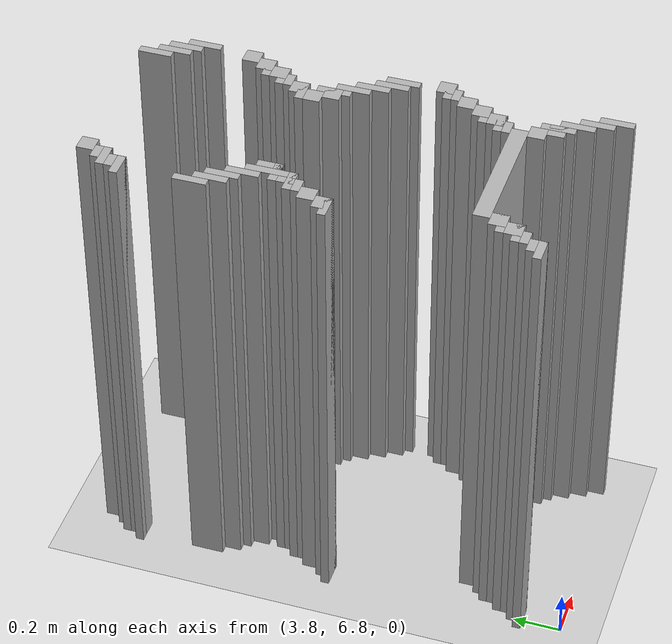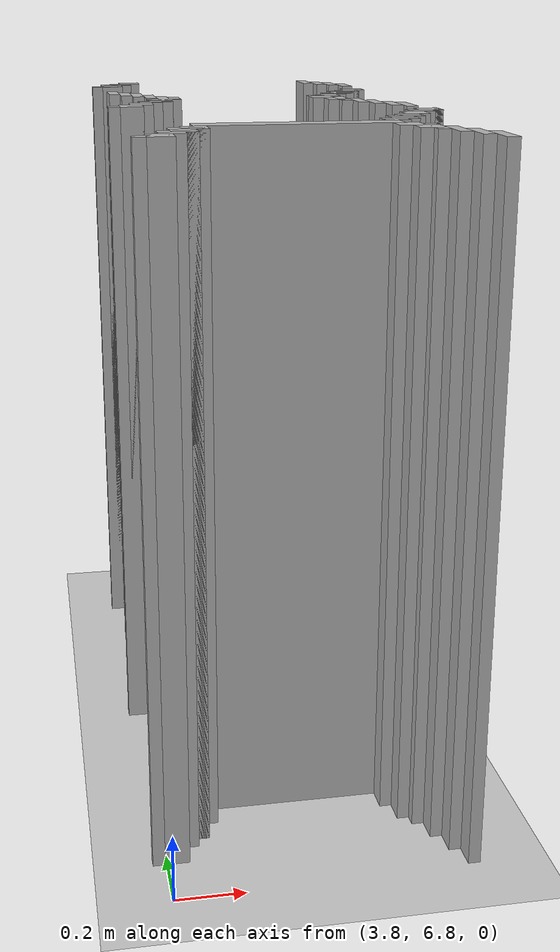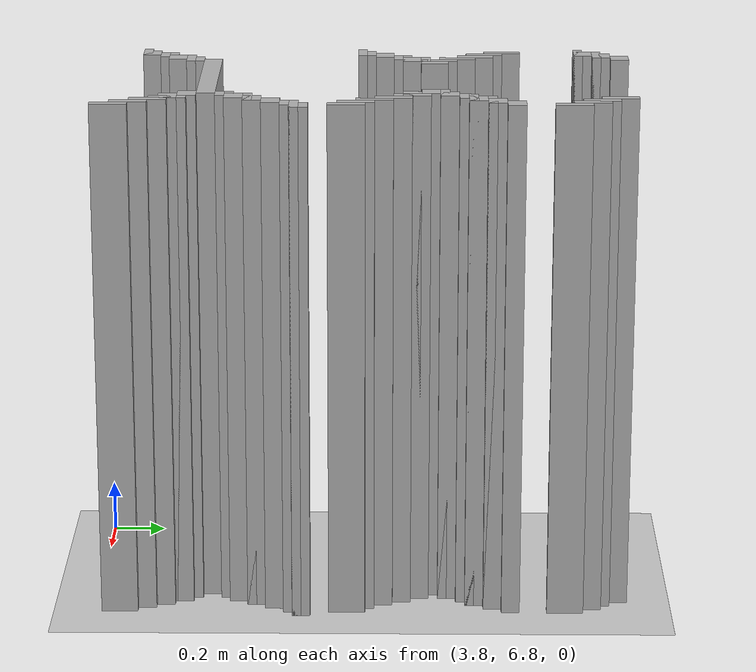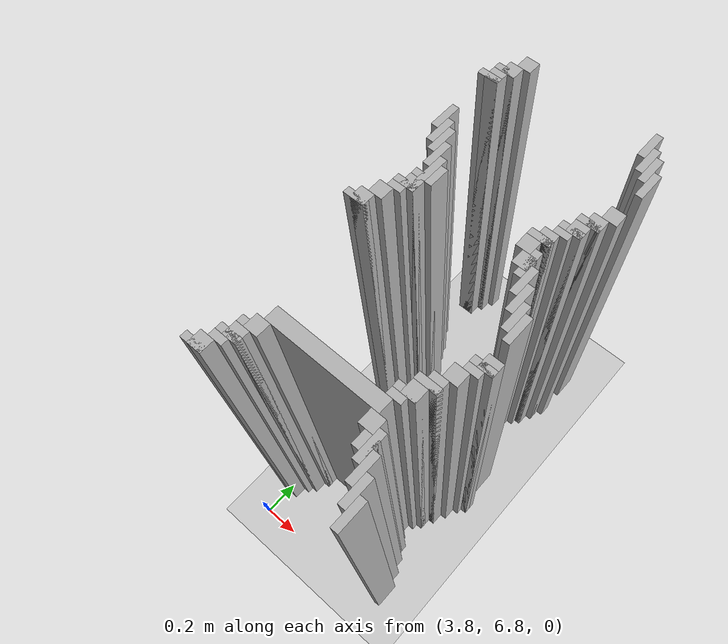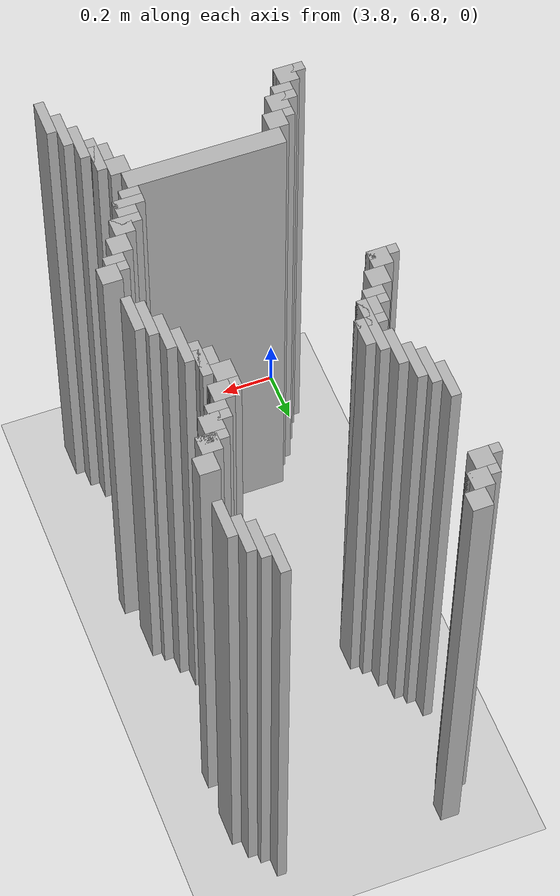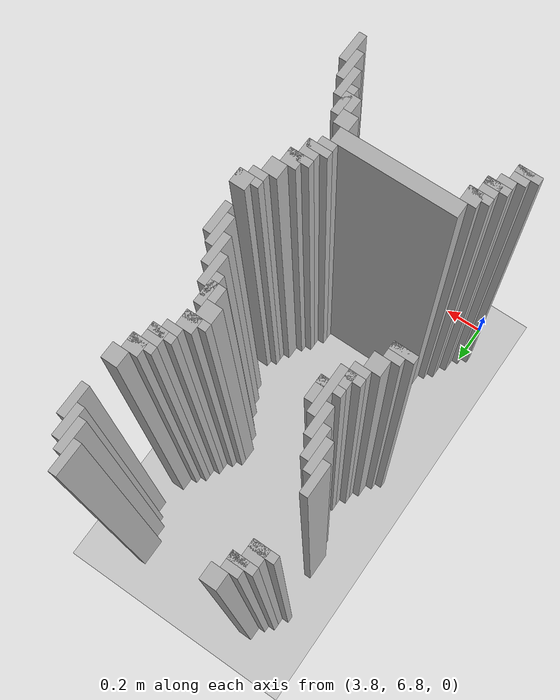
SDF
<sdf version="1.6">
 <world name="slam_world">
  <model name="ground_plane">
   <static>true</static>
   <link name="link">
    <collision name="collision">
     <geometry><plane><normal>0 0 1</normal><size>100 100</size></plane></geometry>
    </collision>
    <visual name="visual">
     <geometry><plane><normal>0 0 1</normal><size>100 100</size></plane></geometry>
     <material>
      <ambient>0.8 0.8 0.8 1</ambient>
      <diffuse>0.8 0.8 0.8 1</diffuse>
      <specular>0.8 0.8 0.8 1</specular>
     </material>
    </visual>
   </link>
  </model>
  <model name="wall_2870">
   <static>true</static>
   <pose>3.897911832946636 8.805104408352667 1.0 0 0 0</pose>
   <link name="link">
    <collision name="collision">
     <geometry><box><size>0.06960556844547564 0.06960556844547564 2.0</size></box></geometry>
    </collision>
    <visual name="visual">
     <geometry><box><size>0.06960556844547564 0.06960556844547564 2.0</size></box></geometry>
     <material><ambient>0.5 0.5 0.5 1</ambient><diffuse>0.7 0.7 0.7 1</diffuse></material>
    </visual>
   </link>
  </model>
  <model name="wall_2871">
   <static>true</static>
   <pose>4.541763341067285 8.77030162412993 1.0 0 0 0</pose>
   <link name="link">
    <collision name="collision">
     <geometry><box><size>0.03480278422273782 0.13921113689095127 2.0</size></box></geometry>
    </collision>
    <visual name="visual">
     <geometry><box><size>0.03480278422273782 0.13921113689095127 2.0</size></box></geometry>
     <material><ambient>0.5 0.5 0.5 1</ambient><diffuse>0.7 0.7 0.7 1</diffuse></material>
    </visual>
   </link>
  </model>
  <model name="wall_2883">
   <static>true</static>
   <pose>3.863109048723898 8.735498839907192 1.0 0 0 0</pose>
   <link name="link">
    <collision name="collision">
     <geometry><box><size>0.06960556844547564 0.06960556844547564 2.0</size></box></geometry>
    </collision>
    <visual name="visual">
     <geometry><box><size>0.06960556844547564 0.06960556844547564 2.0</size></box></geometry>
     <material><ambient>0.5 0.5 0.5 1</ambient><diffuse>0.7 0.7 0.7 1</diffuse></material>
    </visual>
   </link>
  </model>
  <model name="wall_2884">
   <static>true</static>
   <pose>4.576566125290023 8.700696055684455 1.0 0 0 0</pose>
   <link name="link">
    <collision name="collision">
     <geometry><box><size>0.03480278422273782 0.13921113689095127 2.0</size></box></geometry>
    </collision>
    <visual name="visual">
     <geometry><box><size>0.03480278422273782 0.13921113689095127 2.0</size></box></geometry>
     <material><ambient>0.5 0.5 0.5 1</ambient><diffuse>0.7 0.7 0.7 1</diffuse></material>
    </visual>
   </link>
  </model>
  <model name="wall_2896">
   <static>true</static>
   <pose>3.845707656612529 8.718097447795824 1.0 0 0 0</pose>
   <link name="link">
    <collision name="collision">
     <geometry><box><size>0.10440835266821345 0.03480278422273782 2.0</size></box></geometry>
    </collision>
    <visual name="visual">
     <geometry><box><size>0.10440835266821345 0.03480278422273782 2.0</size></box></geometry>
     <material><ambient>0.5 0.5 0.5 1</ambient><diffuse>0.7 0.7 0.7 1</diffuse></material>
    </visual>
   </link>
  </model>
  <model name="wall_2897">
   <static>true</static>
   <pose>4.611368909512761 8.665893271461716 1.0 0 0 0</pose>
   <link name="link">
    <collision name="collision">
     <geometry><box><size>0.03480278422273782 0.13921113689095127 2.0</size></box></geometry>
    </collision>
    <visual name="visual">
     <geometry><box><size>0.03480278422273782 0.13921113689095127 2.0</size></box></geometry>
     <material><ambient>0.5 0.5 0.5 1</ambient><diffuse>0.7 0.7 0.7 1</diffuse></material>
    </visual>
   </link>
  </model>
  <model name="wall_2907">
   <static>true</static>
   <pose>3.82830626450116 8.665893271461716 1.0 0 0 0</pose>
   <link name="link">
    <collision name="collision">
     <geometry><box><size>0.06960556844547564 0.06960556844547564 2.0</size></box></geometry>
    </collision>
    <visual name="visual">
     <geometry><box><size>0.06960556844547564 0.06960556844547564 2.0</size></box></geometry>
     <material><ambient>0.5 0.5 0.5 1</ambient><diffuse>0.7 0.7 0.7 1</diffuse></material>
    </visual>
   </link>
  </model>
  <model name="wall_2918">
   <static>true</static>
   <pose>3.810904872389791 8.648491879350347 1.0 0 0 0</pose>
   <link name="link">
    <collision name="collision">
     <geometry><box><size>0.10440835266821345 0.03480278422273782 2.0</size></box></geometry>
    </collision>
    <visual name="visual">
     <geometry><box><size>0.10440835266821345 0.03480278422273782 2.0</size></box></geometry>
     <material><ambient>0.5 0.5 0.5 1</ambient><diffuse>0.7 0.7 0.7 1</diffuse></material>
    </visual>
   </link>
  </model>
  <model name="wall_2919">
   <static>true</static>
   <pose>4.646171693735498 8.596287703016241 1.0 0 0 0</pose>
   <link name="link">
    <collision name="collision">
     <geometry><box><size>0.03480278422273782 0.13921113689095127 2.0</size></box></geometry>
    </collision>
    <visual name="visual">
     <geometry><box><size>0.03480278422273782 0.13921113689095127 2.0</size></box></geometry>
     <material><ambient>0.5 0.5 0.5 1</ambient><diffuse>0.7 0.7 0.7 1</diffuse></material>
    </visual>
   </link>
  </model>
  <model name="wall_3004">
   <static>true</static>
   <pose>3.810904872389791 8.352668213457076 1.0 0 0 0</pose>
   <link name="link">
    <collision name="collision">
     <geometry><box><size>0.03480278422273782 0.13921113689095127 2.0</size></box></geometry>
    </collision>
    <visual name="visual">
     <geometry><box><size>0.03480278422273782 0.13921113689095127 2.0</size></box></geometry>
     <material><ambient>0.5 0.5 0.5 1</ambient><diffuse>0.7 0.7 0.7 1</diffuse></material>
    </visual>
   </link>
  </model>
  <model name="wall_3005">
   <static>true</static>
   <pose>4.6287703016241295 8.387470997679815 1.0 0 0 0</pose>
   <link name="link">
    <collision name="collision">
     <geometry><box><size>0.06960556844547564 0.06960556844547564 2.0</size></box></geometry>
    </collision>
    <visual name="visual">
     <geometry><box><size>0.06960556844547564 0.06960556844547564 2.0</size></box></geometry>
     <material><ambient>0.5 0.5 0.5 1</ambient><diffuse>0.7 0.7 0.7 1</diffuse></material>
    </visual>
   </link>
  </model>
  <model name="wall_3019">
   <static>true</static>
   <pose>3.845707656612529 8.2830626450116 1.0 0 0 0</pose>
   <link name="link">
    <collision name="collision">
     <geometry><box><size>0.03480278422273782 0.13921113689095127 2.0</size></box></geometry>
    </collision>
    <visual name="visual">
     <geometry><box><size>0.03480278422273782 0.13921113689095127 2.0</size></box></geometry>
     <material><ambient>0.5 0.5 0.5 1</ambient><diffuse>0.7 0.7 0.7 1</diffuse></material>
    </visual>
   </link>
  </model>
  <model name="wall_3020">
   <static>true</static>
   <pose>4.593967517401392 8.317865429234338 1.0 0 0 0</pose>
   <link name="link">
    <collision name="collision">
     <geometry><box><size>0.06960556844547564 0.06960556844547564 2.0</size></box></geometry>
    </collision>
    <visual name="visual">
     <geometry><box><size>0.06960556844547564 0.06960556844547564 2.0</size></box></geometry>
     <material><ambient>0.5 0.5 0.5 1</ambient><diffuse>0.7 0.7 0.7 1</diffuse></material>
    </visual>
   </link>
  </model>
  <model name="wall_3034">
   <static>true</static>
   <pose>3.8805104408352666 8.248259860788863 1.0 0 0 0</pose>
   <link name="link">
    <collision name="collision">
     <geometry><box><size>0.03480278422273782 0.13921113689095127 2.0</size></box></geometry>
    </collision>
    <visual name="visual">
     <geometry><box><size>0.03480278422273782 0.13921113689095127 2.0</size></box></geometry>
     <material><ambient>0.5 0.5 0.5 1</ambient><diffuse>0.7 0.7 0.7 1</diffuse></material>
    </visual>
   </link>
  </model>
  <model name="wall_3035">
   <static>true</static>
   <pose>4.576566125290023 8.30046403712297 1.0 0 0 0</pose>
   <link name="link">
    <collision name="collision">
     <geometry><box><size>0.10440835266821345 0.03480278422273782 2.0</size></box></geometry>
    </collision>
    <visual name="visual">
     <geometry><box><size>0.10440835266821345 0.03480278422273782 2.0</size></box></geometry>
     <material><ambient>0.5 0.5 0.5 1</ambient><diffuse>0.7 0.7 0.7 1</diffuse></material>
    </visual>
   </link>
  </model>
  <model name="wall_3049">
   <static>true</static>
   <pose>4.559164733178654 8.248259860788863 1.0 0 0 0</pose>
   <link name="link">
    <collision name="collision">
     <geometry><box><size>0.06960556844547564 0.06960556844547564 2.0</size></box></geometry>
    </collision>
    <visual name="visual">
     <geometry><box><size>0.06960556844547564 0.06960556844547564 2.0</size></box></geometry>
     <material><ambient>0.5 0.5 0.5 1</ambient><diffuse>0.7 0.7 0.7 1</diffuse></material>
    </visual>
   </link>
  </model>
  <model name="wall_3059">
   <static>true</static>
   <pose>3.9153132250580045 8.178654292343387 1.0 0 0 0</pose>
   <link name="link">
    <collision name="collision">
     <geometry><box><size>0.03480278422273782 0.13921113689095127 2.0</size></box></geometry>
    </collision>
    <visual name="visual">
     <geometry><box><size>0.03480278422273782 0.13921113689095127 2.0</size></box></geometry>
     <material><ambient>0.5 0.5 0.5 1</ambient><diffuse>0.7 0.7 0.7 1</diffuse></material>
    </visual>
   </link>
  </model>
  <model name="wall_3060">
   <static>true</static>
   <pose>4.541763341067285 8.230858468677495 1.0 0 0 0</pose>
   <link name="link">
    <collision name="collision">
     <geometry><box><size>0.10440835266821345 0.03480278422273782 2.0</size></box></geometry>
    </collision>
    <visual name="visual">
     <geometry><box><size>0.10440835266821345 0.03480278422273782 2.0</size></box></geometry>
     <material><ambient>0.5 0.5 0.5 1</ambient><diffuse>0.7 0.7 0.7 1</diffuse></material>
    </visual>
   </link>
  </model>
  <model name="wall_3074">
   <static>true</static>
   <pose>4.524361948955916 8.196055684454755 1.0 0 0 0</pose>
   <link name="link">
    <collision name="collision">
     <geometry><box><size>0.06960556844547564 0.03480278422273782 2.0</size></box></geometry>
    </collision>
    <visual name="visual">
     <geometry><box><size>0.06960556844547564 0.03480278422273782 2.0</size></box></geometry>
     <material><ambient>0.5 0.5 0.5 1</ambient><diffuse>0.7 0.7 0.7 1</diffuse></material>
    </visual>
   </link>
  </model>
  <model name="wall_3083">
   <static>true</static>
   <pose>3.9501160092807424 8.074245939675174 1.0 0 0 0</pose>
   <link name="link">
    <collision name="collision">
     <geometry><box><size>0.03480278422273782 0.2088167053364269 2.0</size></box></geometry>
    </collision>
    <visual name="visual">
     <geometry><box><size>0.03480278422273782 0.2088167053364269 2.0</size></box></geometry>
     <material><ambient>0.5 0.5 0.5 1</ambient><diffuse>0.7 0.7 0.7 1</diffuse></material>
    </visual>
   </link>
  </model>
  <model name="wall_3084">
   <static>true</static>
   <pose>4.489559164733178 8.14385150812065 1.0 0 0 0</pose>
   <link name="link">
    <collision name="collision">
     <geometry><box><size>0.06960556844547564 0.06960556844547564 2.0</size></box></geometry>
    </collision>
    <visual name="visual">
     <geometry><box><size>0.06960556844547564 0.06960556844547564 2.0</size></box></geometry>
     <material><ambient>0.5 0.5 0.5 1</ambient><diffuse>0.7 0.7 0.7 1</diffuse></material>
    </visual>
   </link>
  </model>
  <model name="wall_3097">
   <static>true</static>
   <pose>3.98491879350348 8.091647331786543 1.0 0 0 0</pose>
   <link name="link">
    <collision name="collision">
     <geometry><box><size>0.03480278422273782 0.10440835266821345 2.0</size></box></geometry>
    </collision>
    <visual name="visual">
     <geometry><box><size>0.03480278422273782 0.10440835266821345 2.0</size></box></geometry>
     <material><ambient>0.5 0.5 0.5 1</ambient><diffuse>0.7 0.7 0.7 1</diffuse></material>
    </visual>
   </link>
  </model>
  <model name="wall_3098">
   <static>true</static>
   <pose>4.472157772621809 8.12645011600928 1.0 0 0 0</pose>
   <link name="link">
    <collision name="collision">
     <geometry><box><size>0.10440835266821345 0.03480278422273782 2.0</size></box></geometry>
    </collision>
    <visual name="visual">
     <geometry><box><size>0.10440835266821345 0.03480278422273782 2.0</size></box></geometry>
     <material><ambient>0.5 0.5 0.5 1</ambient><diffuse>0.7 0.7 0.7 1</diffuse></material>
    </visual>
   </link>
  </model>
  <model name="wall_3112">
   <static>true</static>
   <pose>4.454756380510441 8.074245939675174 1.0 0 0 0</pose>
   <link name="link">
    <collision name="collision">
     <geometry><box><size>0.06960556844547564 0.06960556844547564 2.0</size></box></geometry>
    </collision>
    <visual name="visual">
     <geometry><box><size>0.06960556844547564 0.06960556844547564 2.0</size></box></geometry>
     <material><ambient>0.5 0.5 0.5 1</ambient><diffuse>0.7 0.7 0.7 1</diffuse></material>
    </visual>
   </link>
  </model>
  <model name="wall_3124">
   <static>true</static>
   <pose>3.9501160092807424 8.056844547563804 1.0 0 0 0</pose>
   <link name="link">
    <collision name="collision">
     <geometry><box><size>0.10440835266821345 0.03480278422273782 2.0</size></box></geometry>
    </collision>
    <visual name="visual">
     <geometry><box><size>0.10440835266821345 0.03480278422273782 2.0</size></box></geometry>
     <material><ambient>0.5 0.5 0.5 1</ambient><diffuse>0.7 0.7 0.7 1</diffuse></material>
    </visual>
   </link>
  </model>
  <model name="wall_3125">
   <static>true</static>
   <pose>4.506960556844548 8.004640371229698 1.0 0 0 0</pose>
   <link name="link">
    <collision name="collision">
     <geometry><box><size>0.03480278422273782 0.13921113689095127 2.0</size></box></geometry>
    </collision>
    <visual name="visual">
     <geometry><box><size>0.03480278422273782 0.13921113689095127 2.0</size></box></geometry>
     <material><ambient>0.5 0.5 0.5 1</ambient><diffuse>0.7 0.7 0.7 1</diffuse></material>
    </visual>
   </link>
  </model>
  <model name="wall_3138">
   <static>true</static>
   <pose>3.932714617169373 8.004640371229698 1.0 0 0 0</pose>
   <link name="link">
    <collision name="collision">
     <geometry><box><size>0.06960556844547564 0.06960556844547564 2.0</size></box></geometry>
    </collision>
    <visual name="visual">
     <geometry><box><size>0.06960556844547564 0.06960556844547564 2.0</size></box></geometry>
     <material><ambient>0.5 0.5 0.5 1</ambient><diffuse>0.7 0.7 0.7 1</diffuse></material>
    </visual>
   </link>
  </model>
  <model name="wall_3139">
   <static>true</static>
   <pose>4.489559164733178 8.004640371229698 1.0 0 0 0</pose>
   <link name="link">
    <collision name="collision">
     <geometry><box><size>0.06960556844547564 0.06960556844547564 2.0</size></box></geometry>
    </collision>
    <visual name="visual">
     <geometry><box><size>0.06960556844547564 0.06960556844547564 2.0</size></box></geometry>
     <material><ambient>0.5 0.5 0.5 1</ambient><diffuse>0.7 0.7 0.7 1</diffuse></material>
    </visual>
   </link>
  </model>
  <model name="wall_3154">
   <static>true</static>
   <pose>3.9153132250580045 7.987238979118329 1.0 0 0 0</pose>
   <link name="link">
    <collision name="collision">
     <geometry><box><size>0.10440835266821345 0.03480278422273782 2.0</size></box></geometry>
    </collision>
    <visual name="visual">
     <geometry><box><size>0.10440835266821345 0.03480278422273782 2.0</size></box></geometry>
     <material><ambient>0.5 0.5 0.5 1</ambient><diffuse>0.7 0.7 0.7 1</diffuse></material>
    </visual>
   </link>
  </model>
  <model name="wall_3155">
   <static>true</static>
   <pose>4.541763341067285 7.935034802784222 1.0 0 0 0</pose>
   <link name="link">
    <collision name="collision">
     <geometry><box><size>0.03480278422273782 0.13921113689095127 2.0</size></box></geometry>
    </collision>
    <visual name="visual">
     <geometry><box><size>0.03480278422273782 0.13921113689095127 2.0</size></box></geometry>
     <material><ambient>0.5 0.5 0.5 1</ambient><diffuse>0.7 0.7 0.7 1</diffuse></material>
    </visual>
   </link>
  </model>
  <model name="wall_3169">
   <static>true</static>
   <pose>3.897911832946636 7.952436194895592 1.0 0 0 0</pose>
   <link name="link">
    <collision name="collision">
     <geometry><box><size>0.06960556844547564 0.03480278422273782 2.0</size></box></geometry>
    </collision>
    <visual name="visual">
     <geometry><box><size>0.06960556844547564 0.03480278422273782 2.0</size></box></geometry>
     <material><ambient>0.5 0.5 0.5 1</ambient><diffuse>0.7 0.7 0.7 1</diffuse></material>
    </visual>
   </link>
  </model>
  <model name="wall_3181">
   <static>true</static>
   <pose>3.863109048723898 7.900232018561485 1.0 0 0 0</pose>
   <link name="link">
    <collision name="collision">
     <geometry><box><size>0.06960556844547564 0.06960556844547564 2.0</size></box></geometry>
    </collision>
    <visual name="visual">
     <geometry><box><size>0.06960556844547564 0.06960556844547564 2.0</size></box></geometry>
     <material><ambient>0.5 0.5 0.5 1</ambient><diffuse>0.7 0.7 0.7 1</diffuse></material>
    </visual>
   </link>
  </model>
  <model name="wall_3182">
   <static>true</static>
   <pose>4.576566125290023 7.865429234338746 1.0 0 0 0</pose>
   <link name="link">
    <collision name="collision">
     <geometry><box><size>0.03480278422273782 0.13921113689095127 2.0</size></box></geometry>
    </collision>
    <visual name="visual">
     <geometry><box><size>0.03480278422273782 0.13921113689095127 2.0</size></box></geometry>
     <material><ambient>0.5 0.5 0.5 1</ambient><diffuse>0.7 0.7 0.7 1</diffuse></material>
    </visual>
   </link>
  </model>
  <model name="wall_3197">
   <static>true</static>
   <pose>3.82830626450116 7.830626450116009 1.0 0 0 0</pose>
   <link name="link">
    <collision name="collision">
     <geometry><box><size>0.06960556844547564 0.06960556844547564 2.0</size></box></geometry>
    </collision>
    <visual name="visual">
     <geometry><box><size>0.06960556844547564 0.06960556844547564 2.0</size></box></geometry>
     <material><ambient>0.5 0.5 0.5 1</ambient><diffuse>0.7 0.7 0.7 1</diffuse></material>
    </visual>
   </link>
  </model>
  <model name="wall_3198">
   <static>true</static>
   <pose>4.611368909512761 7.795823665893272 1.0 0 0 0</pose>
   <link name="link">
    <collision name="collision">
     <geometry><box><size>0.03480278422273782 0.13921113689095127 2.0</size></box></geometry>
    </collision>
    <visual name="visual">
     <geometry><box><size>0.03480278422273782 0.13921113689095127 2.0</size></box></geometry>
     <material><ambient>0.5 0.5 0.5 1</ambient><diffuse>0.7 0.7 0.7 1</diffuse></material>
    </visual>
   </link>
  </model>
  <model name="wall_3213">
   <static>true</static>
   <pose>3.810904872389791 7.81322505800464 1.0 0 0 0</pose>
   <link name="link">
    <collision name="collision">
     <geometry><box><size>0.10440835266821345 0.03480278422273782 2.0</size></box></geometry>
    </collision>
    <visual name="visual">
     <geometry><box><size>0.10440835266821345 0.03480278422273782 2.0</size></box></geometry>
     <material><ambient>0.5 0.5 0.5 1</ambient><diffuse>0.7 0.7 0.7 1</diffuse></material>
    </visual>
   </link>
  </model>
  <model name="wall_3214">
   <static>true</static>
   <pose>4.646171693735498 7.761020881670533 1.0 0 0 0</pose>
   <link name="link">
    <collision name="collision">
     <geometry><box><size>0.03480278422273782 0.13921113689095127 2.0</size></box></geometry>
    </collision>
    <visual name="visual">
     <geometry><box><size>0.03480278422273782 0.13921113689095127 2.0</size></box></geometry>
     <material><ambient>0.5 0.5 0.5 1</ambient><diffuse>0.7 0.7 0.7 1</diffuse></material>
    </visual>
   </link>
  </model>
  <model name="wall_3295">
   <static>true</static>
   <pose>4.663573085846868 7.587006960556844 1.0 0 0 0</pose>
   <link name="link">
    <collision name="collision">
     <geometry><box><size>0.06960556844547564 0.06960556844547564 2.0</size></box></geometry>
    </collision>
    <visual name="visual">
     <geometry><box><size>0.06960556844547564 0.06960556844547564 2.0</size></box></geometry>
     <material><ambient>0.5 0.5 0.5 1</ambient><diffuse>0.7 0.7 0.7 1</diffuse></material>
    </visual>
   </link>
  </model>
  <model name="wall_3311">
   <static>true</static>
   <pose>4.646171693735498 7.569605568445476 1.0 0 0 0</pose>
   <link name="link">
    <collision name="collision">
     <geometry><box><size>0.10440835266821345 0.03480278422273782 2.0</size></box></geometry>
    </collision>
    <visual name="visual">
     <geometry><box><size>0.10440835266821345 0.03480278422273782 2.0</size></box></geometry>
     <material><ambient>0.5 0.5 0.5 1</ambient><diffuse>0.7 0.7 0.7 1</diffuse></material>
    </visual>
   </link>
  </model>
  <model name="wall_3326">
   <static>true</static>
   <pose>4.6287703016241295 7.534802784222737 1.0 0 0 0</pose>
   <link name="link">
    <collision name="collision">
     <geometry><box><size>0.06960556844547564 0.03480278422273782 2.0</size></box></geometry>
    </collision>
    <visual name="visual">
     <geometry><box><size>0.06960556844547564 0.03480278422273782 2.0</size></box></geometry>
     <material><ambient>0.5 0.5 0.5 1</ambient><diffuse>0.7 0.7 0.7 1</diffuse></material>
    </visual>
   </link>
  </model>
  <model name="wall_3338">
   <static>true</static>
   <pose>4.593967517401392 7.48259860788863 1.0 0 0 0</pose>
   <link name="link">
    <collision name="collision">
     <geometry><box><size>0.06960556844547564 0.06960556844547564 2.0</size></box></geometry>
    </collision>
    <visual name="visual">
     <geometry><box><size>0.06960556844547564 0.06960556844547564 2.0</size></box></geometry>
     <material><ambient>0.5 0.5 0.5 1</ambient><diffuse>0.7 0.7 0.7 1</diffuse></material>
    </visual>
   </link>
  </model>
  <model name="wall_3354">
   <static>true</static>
   <pose>4.559164733178654 7.412993039443156 1.0 0 0 0</pose>
   <link name="link">
    <collision name="collision">
     <geometry><box><size>0.06960556844547564 0.06960556844547564 2.0</size></box></geometry>
    </collision>
    <visual name="visual">
     <geometry><box><size>0.06960556844547564 0.06960556844547564 2.0</size></box></geometry>
     <material><ambient>0.5 0.5 0.5 1</ambient><diffuse>0.7 0.7 0.7 1</diffuse></material>
    </visual>
   </link>
  </model>
  <model name="wall_3370">
   <static>true</static>
   <pose>4.541763341067285 7.395591647331786 1.0 0 0 0</pose>
   <link name="link">
    <collision name="collision">
     <geometry><box><size>0.10440835266821345 0.03480278422273782 2.0</size></box></geometry>
    </collision>
    <visual name="visual">
     <geometry><box><size>0.10440835266821345 0.03480278422273782 2.0</size></box></geometry>
     <material><ambient>0.5 0.5 0.5 1</ambient><diffuse>0.7 0.7 0.7 1</diffuse></material>
    </visual>
   </link>
  </model>
  <model name="wall_3384">
   <static>true</static>
   <pose>4.524361948955916 7.34338747099768 1.0 0 0 0</pose>
   <link name="link">
    <collision name="collision">
     <geometry><box><size>0.06960556844547564 0.06960556844547564 2.0</size></box></geometry>
    </collision>
    <visual name="visual">
     <geometry><box><size>0.06960556844547564 0.06960556844547564 2.0</size></box></geometry>
     <material><ambient>0.5 0.5 0.5 1</ambient><diffuse>0.7 0.7 0.7 1</diffuse></material>
    </visual>
   </link>
  </model>
  <model name="wall_3395">
   <static>true</static>
   <pose>4.506960556844548 7.32598607888631 1.0 0 0 0</pose>
   <link name="link">
    <collision name="collision">
     <geometry><box><size>0.10440835266821345 0.03480278422273782 2.0</size></box></geometry>
    </collision>
    <visual name="visual">
     <geometry><box><size>0.10440835266821345 0.03480278422273782 2.0</size></box></geometry>
     <material><ambient>0.5 0.5 0.5 1</ambient><diffuse>0.7 0.7 0.7 1</diffuse></material>
    </visual>
   </link>
  </model>
  <model name="wall_3409">
   <static>true</static>
   <pose>4.489559164733178 7.291183294663573 1.0 0 0 0</pose>
   <link name="link">
    <collision name="collision">
     <geometry><box><size>0.06960556844547564 0.03480278422273782 2.0</size></box></geometry>
    </collision>
    <visual name="visual">
     <geometry><box><size>0.06960556844547564 0.03480278422273782 2.0</size></box></geometry>
     <material><ambient>0.5 0.5 0.5 1</ambient><diffuse>0.7 0.7 0.7 1</diffuse></material>
    </visual>
   </link>
  </model>
  <model name="wall_3418">
   <static>true</static>
   <pose>4.211136890951276 7.238979118329466 1.0 0 0 0</pose>
   <link name="link">
    <collision name="collision">
     <geometry><box><size>0.5568445475638051 0.06960556844547564 2.0</size></box></geometry>
    </collision>
    <visual name="visual">
     <geometry><box><size>0.5568445475638051 0.06960556844547564 2.0</size></box></geometry>
     <material><ambient>0.5 0.5 0.5 1</ambient><diffuse>0.7 0.7 0.7 1</diffuse></material>
    </visual>
   </link>
  </model>
  <model name="wall_3430">
   <static>true</static>
   <pose>3.932714617169373 7.16937354988399 1.0 0 0 0</pose>
   <link name="link">
    <collision name="collision">
     <geometry><box><size>0.06960556844547564 0.06960556844547564 2.0</size></box></geometry>
    </collision>
    <visual name="visual">
     <geometry><box><size>0.06960556844547564 0.06960556844547564 2.0</size></box></geometry>
     <material><ambient>0.5 0.5 0.5 1</ambient><diffuse>0.7 0.7 0.7 1</diffuse></material>
    </visual>
   </link>
  </model>
  <model name="wall_3431">
   <static>true</static>
   <pose>4.489559164733178 7.16937354988399 1.0 0 0 0</pose>
   <link name="link">
    <collision name="collision">
     <geometry><box><size>0.06960556844547564 0.06960556844547564 2.0</size></box></geometry>
    </collision>
    <visual name="visual">
     <geometry><box><size>0.06960556844547564 0.06960556844547564 2.0</size></box></geometry>
     <material><ambient>0.5 0.5 0.5 1</ambient><diffuse>0.7 0.7 0.7 1</diffuse></material>
    </visual>
   </link>
  </model>
  <model name="wall_3442">
   <static>true</static>
   <pose>3.9153132250580045 7.151972157772621 1.0 0 0 0</pose>
   <link name="link">
    <collision name="collision">
     <geometry><box><size>0.10440835266821345 0.03480278422273782 2.0</size></box></geometry>
    </collision>
    <visual name="visual">
     <geometry><box><size>0.10440835266821345 0.03480278422273782 2.0</size></box></geometry>
     <material><ambient>0.5 0.5 0.5 1</ambient><diffuse>0.7 0.7 0.7 1</diffuse></material>
    </visual>
   </link>
  </model>
  <model name="wall_3443">
   <static>true</static>
   <pose>4.541763341067285 7.099767981438514 1.0 0 0 0</pose>
   <link name="link">
    <collision name="collision">
     <geometry><box><size>0.03480278422273782 0.13921113689095127 2.0</size></box></geometry>
    </collision>
    <visual name="visual">
     <geometry><box><size>0.03480278422273782 0.13921113689095127 2.0</size></box></geometry>
     <material><ambient>0.5 0.5 0.5 1</ambient><diffuse>0.7 0.7 0.7 1</diffuse></material>
    </visual>
   </link>
  </model>
  <model name="wall_3454">
   <static>true</static>
   <pose>3.897911832946636 7.099767981438514 1.0 0 0 0</pose>
   <link name="link">
    <collision name="collision">
     <geometry><box><size>0.06960556844547564 0.06960556844547564 2.0</size></box></geometry>
    </collision>
    <visual name="visual">
     <geometry><box><size>0.06960556844547564 0.06960556844547564 2.0</size></box></geometry>
     <material><ambient>0.5 0.5 0.5 1</ambient><diffuse>0.7 0.7 0.7 1</diffuse></material>
    </visual>
   </link>
  </model>
  <model name="wall_3455">
   <static>true</static>
   <pose>4.524361948955916 7.099767981438514 1.0 0 0 0</pose>
   <link name="link">
    <collision name="collision">
     <geometry><box><size>0.06960556844547564 0.06960556844547564 2.0</size></box></geometry>
    </collision>
    <visual name="visual">
     <geometry><box><size>0.06960556844547564 0.06960556844547564 2.0</size></box></geometry>
     <material><ambient>0.5 0.5 0.5 1</ambient><diffuse>0.7 0.7 0.7 1</diffuse></material>
    </visual>
   </link>
  </model>
  <model name="wall_3466">
   <static>true</static>
   <pose>3.8805104408352666 7.082366589327146 1.0 0 0 0</pose>
   <link name="link">
    <collision name="collision">
     <geometry><box><size>0.10440835266821345 0.03480278422273782 2.0</size></box></geometry>
    </collision>
    <visual name="visual">
     <geometry><box><size>0.10440835266821345 0.03480278422273782 2.0</size></box></geometry>
     <material><ambient>0.5 0.5 0.5 1</ambient><diffuse>0.7 0.7 0.7 1</diffuse></material>
    </visual>
   </link>
  </model>
  <model name="wall_3467">
   <static>true</static>
   <pose>4.576566125290023 7.03016241299304 1.0 0 0 0</pose>
   <link name="link">
    <collision name="collision">
     <geometry><box><size>0.03480278422273782 0.13921113689095127 2.0</size></box></geometry>
    </collision>
    <visual name="visual">
     <geometry><box><size>0.03480278422273782 0.13921113689095127 2.0</size></box></geometry>
     <material><ambient>0.5 0.5 0.5 1</ambient><diffuse>0.7 0.7 0.7 1</diffuse></material>
    </visual>
   </link>
  </model>
  <model name="wall_3477">
   <static>true</static>
   <pose>3.863109048723898 7.047563805104408 1.0 0 0 0</pose>
   <link name="link">
    <collision name="collision">
     <geometry><box><size>0.06960556844547564 0.03480278422273782 2.0</size></box></geometry>
    </collision>
    <visual name="visual">
     <geometry><box><size>0.06960556844547564 0.03480278422273782 2.0</size></box></geometry>
     <material><ambient>0.5 0.5 0.5 1</ambient><diffuse>0.7 0.7 0.7 1</diffuse></material>
    </visual>
   </link>
  </model>
  <model name="wall_3485">
   <static>true</static>
   <pose>3.82830626450116 6.995359628770301 1.0 0 0 0</pose>
   <link name="link">
    <collision name="collision">
     <geometry><box><size>0.06960556844547564 0.06960556844547564 2.0</size></box></geometry>
    </collision>
    <visual name="visual">
     <geometry><box><size>0.06960556844547564 0.06960556844547564 2.0</size></box></geometry>
     <material><ambient>0.5 0.5 0.5 1</ambient><diffuse>0.7 0.7 0.7 1</diffuse></material>
    </visual>
   </link>
  </model>
  <model name="wall_3486">
   <static>true</static>
   <pose>4.611368909512761 6.960556844547564 1.0 0 0 0</pose>
   <link name="link">
    <collision name="collision">
     <geometry><box><size>0.03480278422273782 0.13921113689095127 2.0</size></box></geometry>
    </collision>
    <visual name="visual">
     <geometry><box><size>0.03480278422273782 0.13921113689095127 2.0</size></box></geometry>
     <material><ambient>0.5 0.5 0.5 1</ambient><diffuse>0.7 0.7 0.7 1</diffuse></material>
    </visual>
   </link>
  </model>
  <model name="wall_3496">
   <static>true</static>
   <pose>3.810904872389791 6.977958236658933 1.0 0 0 0</pose>
   <link name="link">
    <collision name="collision">
     <geometry><box><size>0.10440835266821345 0.03480278422273782 2.0</size></box></geometry>
    </collision>
    <visual name="visual">
     <geometry><box><size>0.10440835266821345 0.03480278422273782 2.0</size></box></geometry>
     <material><ambient>0.5 0.5 0.5 1</ambient><diffuse>0.7 0.7 0.7 1</diffuse></material>
    </visual>
   </link>
  </model>
  <model name="wall_3505">
   <static>true</static>
   <pose>4.646171693735498 6.890951276102088 1.0 0 0 0</pose>
   <link name="link">
    <collision name="collision">
     <geometry><box><size>0.03480278422273782 0.13921113689095127 2.0</size></box></geometry>
    </collision>
    <visual name="visual">
     <geometry><box><size>0.03480278422273782 0.13921113689095127 2.0</size></box></geometry>
     <material><ambient>0.5 0.5 0.5 1</ambient><diffuse>0.7 0.7 0.7 1</diffuse></material>
    </visual>
   </link>
  </model>
 </world>
</sdf>
